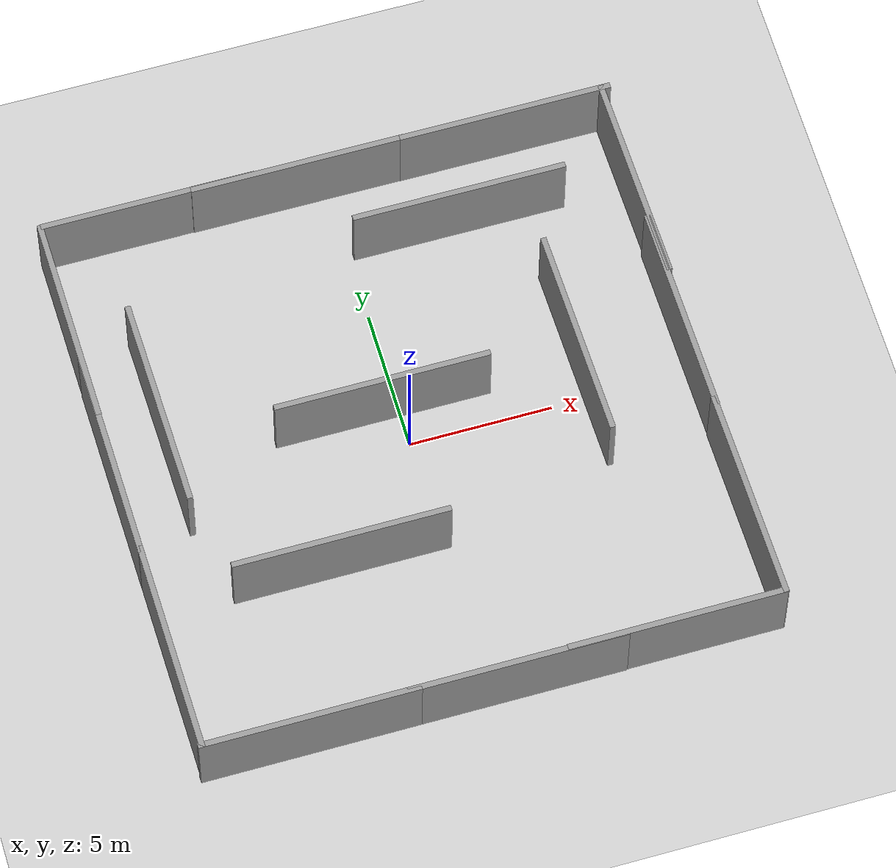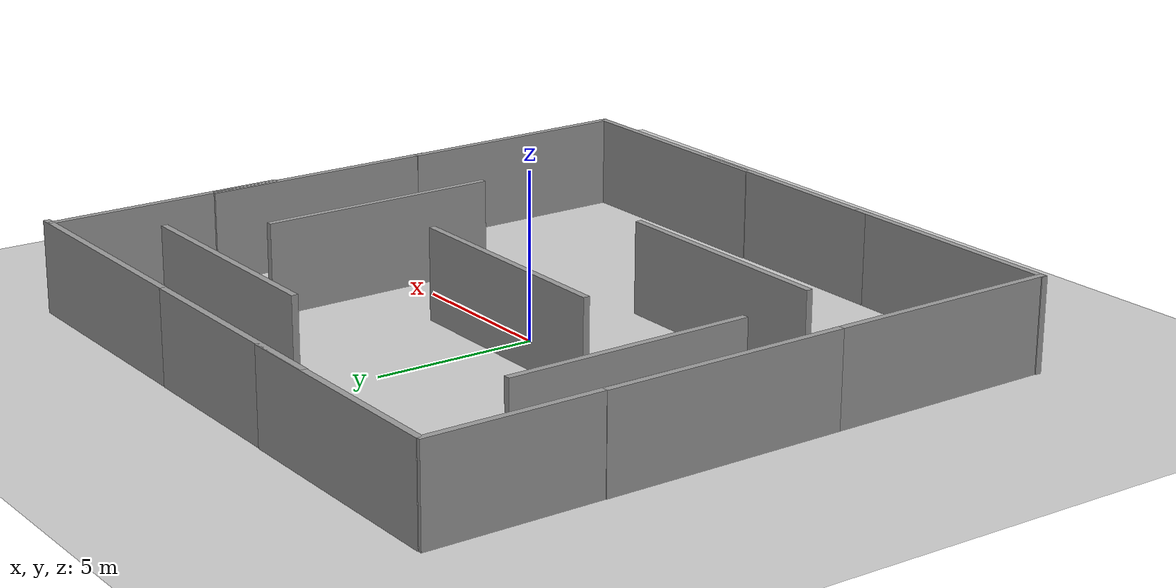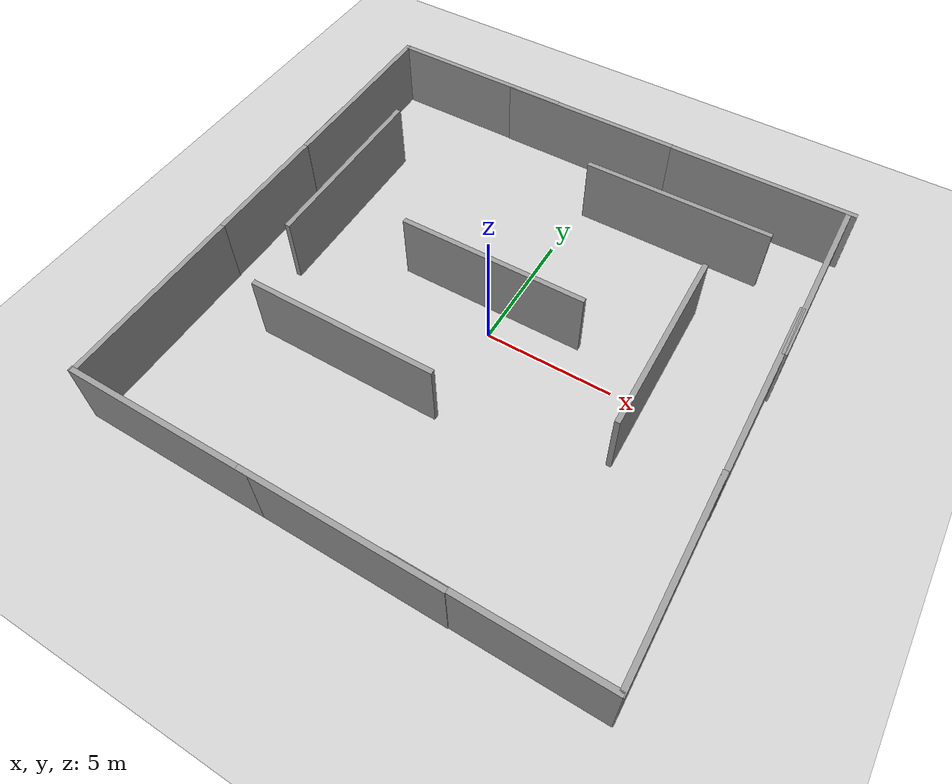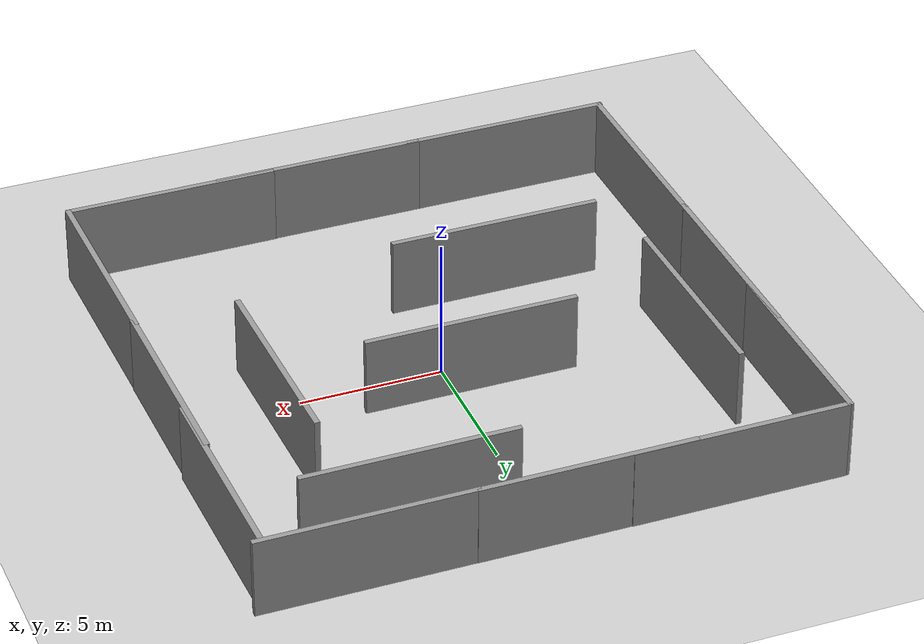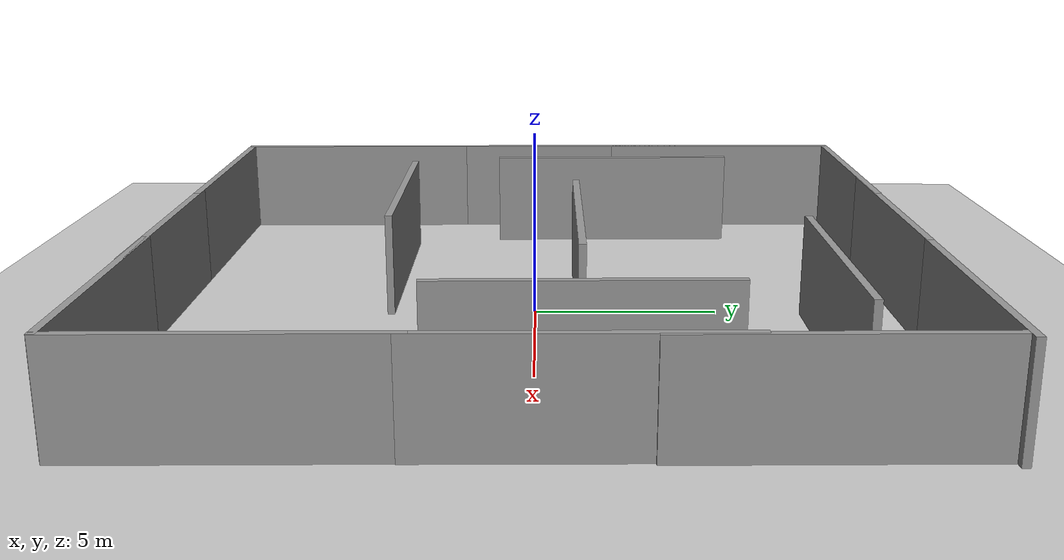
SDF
<sdf version="1.7">
 <world name="default">
  <light name="sun" type="directional">
   <pose>0 0 10 0 -0 0</pose>
   <diffuse>0.8 0.8 0.8 1</diffuse>
   <specular>0.2 0.2 0.2 1</specular>
   <attenuation>
    <range>1000</range>
    <constant>0.9</constant>
    <linear>0.01</linear>
    <quadratic>0.001</quadratic>
   </attenuation>
   <direction>-0.5 0.1 -0.9</direction>
   <spot><inner_angle>0</inner_angle><outer_angle>0</outer_angle><falloff>0</falloff></spot>
  </light>
  <model name="ground_plane">
   <static>1</static>
   <link name="link">
    <collision name="collision">
     <geometry><plane><normal>0 0 1</normal><size>100 100</size></plane></geometry>
     <surface>
      <contact><collide_bitmask>65535</collide_bitmask></contact>
      <friction><ode><mu>100</mu><mu2>50</mu2></ode></friction>
     </surface>
    </collision>
    <visual name="visual">
     <cast_shadows>0</cast_shadows>
     <geometry><plane><normal>0 0 1</normal><size>100 100</size></plane></geometry>
     <material>
      <script><uri>file://media/materials/scripts/gazebo.material</uri><name>Gazebo/Grey</name></script>
     </material>
    </visual>
   </link>
  </model>
  <gravity>0 0 -9.8</gravity>
  <magnetic_field>6e-06 2.3e-05 -4.2e-05</magnetic_field>
  <atmosphere type="adiabatic"/>
  <physics type="ode">
   <max_step_size>0.001</max_step_size>
   <real_time_factor>1</real_time_factor>
   <real_time_update_rate>1000</real_time_update_rate>
  </physics>
  <scene><ambient>0.4 0.4 0.4 1</ambient><background>0.7 0.7 0.7 1</background><shadows>1</shadows></scene>
  <spherical_coordinates>
   <surface_model>EARTH_WGS84</surface_model>
   <latitude_deg>0</latitude_deg>
   <longitude_deg>0</longitude_deg>
   <elevation>0</elevation>
   <heading_deg>0</heading_deg>
  </spherical_coordinates>
  <model name="grey_wall">
   <static>1</static>
   <link name="link">
    <pose>0 0 1.4 0 -0 0</pose>
    <collision name="collision"><geometry><box><size>7.5 0.2 2.8</size></box></geometry></collision>
    <visual name="visual">
     <cast_shadows>0</cast_shadows>
     <geometry><box><size>7.5 0.2 2.8</size></box></geometry>
     <material>
      <script>
       <uri>model://grey_wall/materials/scripts</uri>
       <uri>model://grey_wall/materials/textures</uri>
       <name>vrc/grey_wall</name>
      </script>
     </material>
    </visual>
   </link>
   <pose>-6.22682 -9.88975 0 0 -0 0</pose>
  </model>
  <model name="grey_wall_clone">
   <static>1</static>
   <link name="link">
    <pose>0 0 1.4 0 -0 0</pose>
    <collision name="collision"><geometry><box><size>7.5 0.2 2.8</size></box></geometry></collision>
    <visual name="visual">
     <cast_shadows>0</cast_shadows>
     <geometry><box><size>7.5 0.2 2.8</size></box></geometry>
     <material>
      <script>
       <uri>model://grey_wall/materials/scripts</uri>
       <uri>model://grey_wall/materials/textures</uri>
       <name>vrc/grey_wall</name>
      </script>
     </material>
    </visual>
   </link>
   <pose>0.801088 -9.88786 0 0 -0 0</pose>
  </model>
  <model name="grey_wall_clone_0">
   <static>1</static>
   <link name="link">
    <pose>0 0 1.4 0 -0 0</pose>
    <collision name="collision"><geometry><box><size>7.5 0.2 2.8</size></box></geometry></collision>
    <visual name="visual">
     <cast_shadows>0</cast_shadows>
     <geometry><box><size>7.5 0.2 2.8</size></box></geometry>
     <material>
      <script>
       <uri>model://grey_wall/materials/scripts</uri>
       <uri>model://grey_wall/materials/textures</uri>
       <name>vrc/grey_wall</name>
      </script>
     </material>
    </visual>
   </link>
   <pose>6.2185 -9.8636 0 0 -0 0</pose>
  </model>
  <model name="grey_wall_clone_1">
   <static>1</static>
   <link name="link">
    <pose>0 0 1.4 0 -0 0</pose>
    <collision name="collision"><geometry><box><size>7.5 0.2 2.8</size></box></geometry></collision>
    <visual name="visual">
     <cast_shadows>0</cast_shadows>
     <geometry><box><size>7.5 0.2 2.8</size></box></geometry>
     <material>
      <script>
       <uri>model://grey_wall/materials/scripts</uri>
       <uri>model://grey_wall/materials/textures</uri>
       <name>vrc/grey_wall</name>
      </script>
     </material>
    </visual>
   </link>
   <pose>6.26901 9.96753 0 0 -0 0</pose>
  </model>
  <model name="grey_wall_clone_2">
   <static>1</static>
   <link name="link">
    <pose>0 0 1.4 0 -0 0</pose>
    <collision name="collision"><geometry><box><size>7.5 0.2 2.8</size></box></geometry></collision>
    <visual name="visual">
     <cast_shadows>0</cast_shadows>
     <geometry><box><size>7.5 0.2 2.8</size></box></geometry>
     <material>
      <script>
       <uri>model://grey_wall/materials/scripts</uri>
       <uri>model://grey_wall/materials/textures</uri>
       <name>vrc/grey_wall</name>
      </script>
     </material>
    </visual>
   </link>
   <pose>-1.0863 9.97773 0 0 -0 0</pose>
  </model>
  <model name="grey_wall_clone_3">
   <static>1</static>
   <link name="link">
    <pose>0 0 1.4 0 -0 0</pose>
    <collision name="collision"><geometry><box><size>7.5 0.2 2.8</size></box></geometry></collision>
    <visual name="visual">
     <cast_shadows>0</cast_shadows>
     <geometry><box><size>7.5 0.2 2.8</size></box></geometry>
     <material>
      <script>
       <uri>model://grey_wall/materials/scripts</uri>
       <uri>model://grey_wall/materials/textures</uri>
       <name>vrc/grey_wall</name>
      </script>
     </material>
    </visual>
   </link>
   <pose>-6.32845 9.9967 0 0 -0 0</pose>
  </model>
  <model name="grey_wall_clone_4">
   <static>1</static>
   <link name="link">
    <pose>0 0 1.4 0 -0 0</pose>
    <collision name="collision"><geometry><box><size>7.5 0.2 2.8</size></box></geometry></collision>
    <visual name="visual">
     <cast_shadows>0</cast_shadows>
     <geometry><box><size>7.5 0.2 2.8</size></box></geometry>
     <material>
      <script>
       <uri>model://grey_wall/materials/scripts</uri>
       <uri>model://grey_wall/materials/textures</uri>
       <name>vrc/grey_wall</name>
      </script>
     </material>
    </visual>
   </link>
   <pose>9.84397 -6.19465 0 0 -0 1.58664</pose>
  </model>
  <model name="grey_wall_clone_4_clone">
   <static>1</static>
   <link name="link">
    <pose>0 0 1.4 0 -0 0</pose>
    <collision name="collision"><geometry><box><size>7.5 0.2 2.8</size></box></geometry></collision>
    <visual name="visual">
     <cast_shadows>0</cast_shadows>
     <geometry><box><size>7.5 0.2 2.8</size></box></geometry>
     <material>
      <script>
       <uri>model://grey_wall/materials/scripts</uri>
       <uri>model://grey_wall/materials/textures</uri>
       <name>vrc/grey_wall</name>
      </script>
     </material>
    </visual>
   </link>
   <pose>9.76 0.985085 0 0 -0 1.58397</pose>
  </model>
  <model name="grey_wall_clone_4_clone_clone">
   <static>1</static>
   <link name="link">
    <pose>0 0 1.4 0 -0 0</pose>
    <collision name="collision"><geometry><box><size>7.5 0.2 2.8</size></box></geometry></collision>
    <visual name="visual">
     <cast_shadows>0</cast_shadows>
     <geometry><box><size>7.5 0.2 2.8</size></box></geometry>
     <material>
      <script>
       <uri>model://grey_wall/materials/scripts</uri>
       <uri>model://grey_wall/materials/textures</uri>
       <name>vrc/grey_wall</name>
      </script>
     </material>
    </visual>
   </link>
   <pose>9.76164 6.28665 0 0 -0 1.58781</pose>
  </model>
  <model name="grey_wall_clone_4_clone_clone_0">
   <static>1</static>
   <link name="link">
    <pose>0 0 1.4 0 -0 0</pose>
    <collision name="collision"><geometry><box><size>7.5 0.2 2.8</size></box></geometry></collision>
    <visual name="visual">
     <cast_shadows>0</cast_shadows>
     <geometry><box><size>7.5 0.2 2.8</size></box></geometry>
     <material>
      <script>
       <uri>model://grey_wall/materials/scripts</uri>
       <uri>model://grey_wall/materials/textures</uri>
       <name>vrc/grey_wall</name>
      </script>
     </material>
    </visual>
   </link>
   <pose>-9.89094 -6.21656 0 0 -0 1.58397</pose>
  </model>
  <model name="grey_wall_clone_4_clone_clone_1">
   <static>1</static>
   <link name="link">
    <pose>0 0 1.4 0 -0 0</pose>
    <collision name="collision"><geometry><box><size>7.5 0.2 2.8</size></box></geometry></collision>
    <visual name="visual">
     <cast_shadows>0</cast_shadows>
     <geometry><box><size>7.5 0.2 2.8</size></box></geometry>
     <material>
      <script>
       <uri>model://grey_wall/materials/scripts</uri>
       <uri>model://grey_wall/materials/textures</uri>
       <name>vrc/grey_wall</name>
      </script>
     </material>
    </visual>
   </link>
   <pose>-9.98945 1.04843 0 0 -0 1.58397</pose>
  </model>
  <model name="grey_wall_clone_4_clone_clone_2">
   <static>1</static>
   <link name="link">
    <pose>0 0 1.4 0 -0 0</pose>
    <collision name="collision"><geometry><box><size>7.5 0.2 2.8</size></box></geometry></collision>
    <visual name="visual">
     <cast_shadows>0</cast_shadows>
     <geometry><box><size>7.5 0.2 2.8</size></box></geometry>
     <material>
      <script>
       <uri>model://grey_wall/materials/scripts</uri>
       <uri>model://grey_wall/materials/textures</uri>
       <name>vrc/grey_wall</name>
      </script>
     </material>
    </visual>
   </link>
   <pose>-10.0425 6.32716 0 0 -0 1.58397</pose>
  </model>
  <light name="user_directional_light_0" type="directional">
   <pose>7.99642 -20.8781 1 0 -0 0</pose>
   <diffuse>0.5 0.5 0.5 1</diffuse>
   <specular>0.1 0.1 0.1 1</specular>
   <direction>0.1 0.1 -0.9</direction>
   <attenuation>
    <range>20</range>
    <constant>0.5</constant>
    <linear>0.01</linear>
    <quadratic>0.001</quadratic>
   </attenuation>
   <spot><inner_angle>0</inner_angle><outer_angle>0</outer_angle><falloff>0</falloff></spot>
  </light>
  <light name="user_directional_light_1" type="directional">
   <pose>-21.6895 -9.91198 1 0 -0 0</pose>
   <diffuse>0.5 0.5 0.5 1</diffuse>
   <specular>0.1 0.1 0.1 1</specular>
   <direction>0.1 0.1 -0.9</direction>
   <attenuation>
    <range>20</range>
    <constant>0.5</constant>
    <linear>0.01</linear>
    <quadratic>0.001</quadratic>
   </attenuation>
   <spot><inner_angle>0</inner_angle><outer_angle>0</outer_angle><falloff>0</falloff></spot>
  </light>
  <light name="user_directional_light_2" type="directional">
   <pose>7.42215 -12.8363 1 0 -0 0</pose>
   <diffuse>0.5 0.5 0.5 1</diffuse>
   <specular>0.1 0.1 0.1 1</specular>
   <direction>0.1 0.1 -0.9</direction>
   <attenuation>
    <range>20</range>
    <constant>0.5</constant>
    <linear>0.01</linear>
    <quadratic>0.001</quadratic>
   </attenuation>
   <spot><inner_angle>0</inner_angle><outer_angle>0</outer_angle><falloff>0</falloff></spot>
  </light>
  <model name="grey_wall_0">
   <static>1</static>
   <link name="link">
    <pose>0 0 1.4 0 -0 0</pose>
    <collision name="collision"><geometry><box><size>7.5 0.2 2.8</size></box></geometry></collision>
    <visual name="visual">
     <cast_shadows>0</cast_shadows>
     <geometry><box><size>7.5 0.2 2.8</size></box></geometry>
     <material>
      <script>
       <uri>model://grey_wall/materials/scripts</uri>
       <uri>model://grey_wall/materials/textures</uri>
       <name>vrc/grey_wall</name>
      </script>
     </material>
    </visual>
   </link>
   <pose>-0.599986 1.20641 0 0 -0 0</pose>
  </model>
  <model name="grey_wall_1">
   <static>1</static>
   <link name="link">
    <pose>0 0 1.4 0 -0 0</pose>
    <collision name="collision"><geometry><box><size>7.5 0.2 2.8</size></box></geometry></collision>
    <visual name="visual">
     <cast_shadows>0</cast_shadows>
     <geometry><box><size>7.5 0.2 2.8</size></box></geometry>
     <material>
      <script>
       <uri>model://grey_wall/materials/scripts</uri>
       <uri>model://grey_wall/materials/textures</uri>
       <name>vrc/grey_wall</name>
      </script>
     </material>
    </visual>
   </link>
   <pose>6.16368 1.13107 0 0 -0 1.59052</pose>
  </model>
  <model name="grey_wall_0_clone">
   <static>1</static>
   <link name="link">
    <pose>0 0 1.4 0 -0 0</pose>
    <collision name="collision"><geometry><box><size>7.5 0.2 2.8</size></box></geometry></collision>
    <visual name="visual">
     <cast_shadows>0</cast_shadows>
     <geometry><box><size>7.5 0.2 2.8</size></box></geometry>
     <material>
      <script>
       <uri>model://grey_wall/materials/scripts</uri>
       <uri>model://grey_wall/materials/textures</uri>
       <name>vrc/grey_wall</name>
      </script>
     </material>
    </visual>
   </link>
   <pose>-3.48443 -3.97698 0 0 -0 0</pose>
  </model>
  <model name="grey_wall_1_clone">
   <static>1</static>
   <link name="link">
    <pose>0 0 1.4 0 -0 0</pose>
    <collision name="collision"><geometry><box><size>7.5 0.2 2.8</size></box></geometry></collision>
    <visual name="visual">
     <cast_shadows>0</cast_shadows>
     <geometry><box><size>7.5 0.2 2.8</size></box></geometry>
     <material>
      <script>
       <uri>model://grey_wall/materials/scripts</uri>
       <uri>model://grey_wall/materials/textures</uri>
       <name>vrc/grey_wall</name>
      </script>
     </material>
    </visual>
   </link>
   <pose>-7.96513 2.49597 0 0 -0 1.59052</pose>
  </model>
  <model name="grey_wall_0_clone_0">
   <static>1</static>
   <link name="link">
    <pose>0 0 1.4 0 -0 0</pose>
    <collision name="collision"><geometry><box><size>7.5 0.2 2.8</size></box></geometry></collision>
    <visual name="visual">
     <cast_shadows>0</cast_shadows>
     <geometry><box><size>7.5 0.2 2.8</size></box></geometry>
     <material>
      <script>
       <uri>model://grey_wall/materials/scripts</uri>
       <uri>model://grey_wall/materials/textures</uri>
       <name>vrc/grey_wall</name>
      </script>
     </material>
    </visual>
   </link>
   <pose>3.88795 7.40839 0 0 -0 0</pose>
  </model>
 </world>
</sdf>
